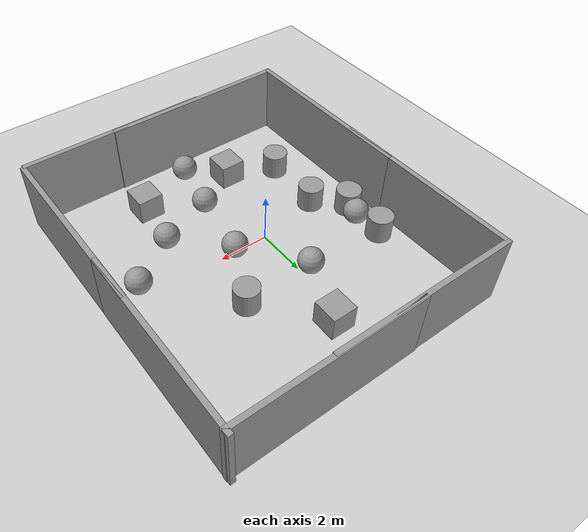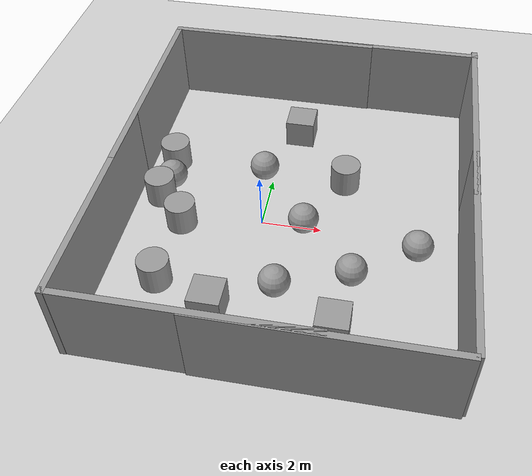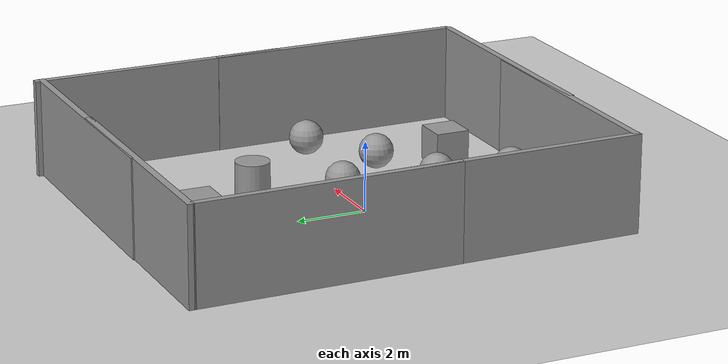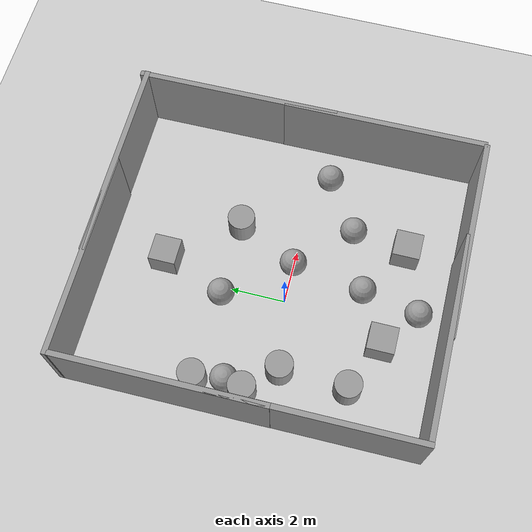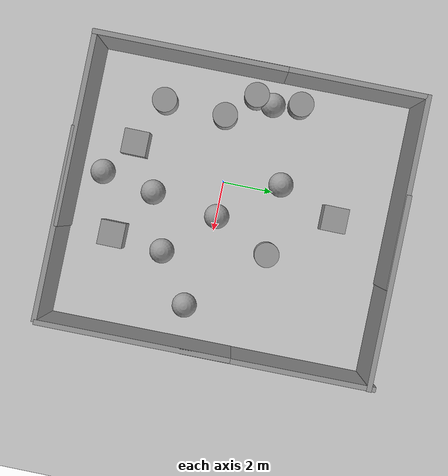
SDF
<sdf version="1.6">
 <world name="default">
  <light name="sun" type="directional">
   <pose>0 0 10 0 -0 0</pose>
   <diffuse>0.8 0.8 0.8 1</diffuse>
   <specular>0.2 0.2 0.2 1</specular>
   <attenuation>
    <range>1000</range>
    <constant>0.9</constant>
    <linear>0.01</linear>
    <quadratic>0.001</quadratic>
   </attenuation>
   <direction>-0.5 0.1 -0.9</direction>
  </light>
  <model name="ground_plane">
   <static>1</static>
   <link name="link">
    <collision name="collision">
     <geometry><plane><normal>0 0 1</normal><size>100 100</size></plane></geometry>
     <surface>
      <contact><collide_bitmask>65535</collide_bitmask></contact>
      <friction><ode><mu>100</mu><mu2>50</mu2></ode></friction>
     </surface>
    </collision>
    <visual name="visual">
     <cast_shadows>0</cast_shadows>
     <geometry><plane><normal>0 0 1</normal><size>100 100</size></plane></geometry>
     <material>
      <script><uri>file://media/materials/scripts/gazebo.material</uri><name>Gazebo/Grey</name></script>
     </material>
    </visual>
   </link>
  </model>
  <gravity>0 0 -9.8</gravity>
  <magnetic_field>6e-06 2.3e-05 -4.2e-05</magnetic_field>
  <atmosphere type="adiabatic"/>
  <physics name="default_physics" default="0" type="ode">
   <max_step_size>0.001</max_step_size>
   <real_time_factor>1</real_time_factor>
   <real_time_update_rate>1000</real_time_update_rate>
  </physics>
  <scene><ambient>0.4 0.4 0.4 1</ambient><background>0.7 0.7 0.7 1</background><shadows>1</shadows></scene>
  <audio><device>default</device></audio>
  <spherical_coordinates>
   <surface_model>EARTH_WGS84</surface_model>
   <latitude_deg>0</latitude_deg>
   <longitude_deg>0</longitude_deg>
   <elevation>0</elevation>
   <heading_deg>0</heading_deg>
  </spherical_coordinates>
  <model name="unit_sphere">
   <pose>0.971151 -2.67962 0.5 0 -0 0</pose>
   <link name="link">
    <inertial>
     <mass>1</mass>
     <inertia><ixx>0.1</ixx><ixy>0</ixy><ixz>0</ixz><iyy>0.1</iyy><iyz>0</iyz><izz>0.1</izz></inertia>
    </inertial>
    <collision name="collision"><geometry><sphere><radius>0.5</radius></sphere></geometry></collision>
    <visual name="visual">
     <geometry><sphere><radius>0.5</radius></sphere></geometry>
     <material>
      <script><name>Gazebo/Grey</name><uri>file://media/materials/scripts/gazebo.material</uri></script>
     </material>
    </visual>
   </link>
  </model>
  <model name="unit_sphere_0">
   <pose>-0.3538 2.28422 0.5 0 -0 0</pose>
   <link name="link">
    <inertial>
     <mass>1</mass>
     <inertia><ixx>0.1</ixx><ixy>0</ixy><ixz>0</ixz><iyy>0.1</iyy><iyz>0</iyz><izz>0.1</izz></inertia>
    </inertial>
    <collision name="collision"><geometry><sphere><radius>0.5</radius></sphere></geometry></collision>
    <visual name="visual">
     <geometry><sphere><radius>0.5</radius></sphere></geometry>
     <material>
      <script><name>Gazebo/Grey</name><uri>file://media/materials/scripts/gazebo.material</uri></script>
     </material>
    </visual>
   </link>
  </model>
  <model name="unit_sphere_1">
   <pose>-3.41921 1.32551 0.5 0 -0 0</pose>
   <link name="link">
    <inertial>
     <mass>1</mass>
     <inertia><ixx>0.1</ixx><ixy>0</ixy><ixz>0</ixz><iyy>0.1</iyy><iyz>0</iyz><izz>0.1</izz></inertia>
    </inertial>
    <collision name="collision"><geometry><sphere><radius>0.5</radius></sphere></geometry></collision>
    <visual name="visual">
     <geometry><sphere><radius>0.5</radius></sphere></geometry>
     <material>
      <script><name>Gazebo/Grey</name><uri>file://media/materials/scripts/gazebo.material</uri></script>
     </material>
    </visual>
   </link>
  </model>
  <model name="unit_sphere_2">
   <pose>3.20823 -1.86111 0.5 0 -0 0</pose>
   <link name="link">
    <inertial>
     <mass>1</mass>
     <inertia><ixx>0.1</ixx><ixy>0</ixy><ixz>0</ixz><iyy>0.1</iyy><iyz>0</iyz><izz>0.1</izz></inertia>
    </inertial>
    <collision name="collision"><geometry><sphere><radius>0.5</radius></sphere></geometry></collision>
    <visual name="visual">
     <geometry><sphere><radius>0.5</radius></sphere></geometry>
     <material>
      <script><name>Gazebo/Grey</name><uri>file://media/materials/scripts/gazebo.material</uri></script>
     </material>
    </visual>
   </link>
  </model>
  <model name="unit_cylinder_1">
   <link name="link">
    <inertial>
     <mass>1</mass>
     <inertia><ixx>0.145833</ixx><ixy>0</ixy><ixz>0</ixz><iyy>0.145833</iyy><iyz>0</iyz><izz>0.125</izz></inertia>
    </inertial>
    <visual name="visual">
     <geometry><cylinder><radius>0.5</radius><length>1</length></cylinder></geometry>
     <material>
      <script><name>Gazebo/Grey</name><uri>file://media/materials/scripts/gazebo.material</uri></script>
     </material>
    </visual>
    <collision name="collision">
     <geometry><cylinder><radius>0.5</radius><length>1</length></cylinder></geometry>
     <surface>
      <friction>
       <ode><mu>1</mu><mu2>1</mu2><fdir1>0 0 0</fdir1><slip1>0</slip1><slip2>0</slip2></ode>
       <torsional>
        <coefficient>1</coefficient>
        <patch_radius>0</patch_radius>
        <surface_radius>0</surface_radius>
        <use_patch_radius>1</use_patch_radius>
        <ode><slip>0</slip></ode>
       </torsional>
      </friction>
      <bounce><restitution_coefficient>0</restitution_coefficient><threshold>1e+06</threshold></bounce>
      <contact>
       <collide_without_contact>0</collide_without_contact>
       <collide_without_contact_bitmask>1</collide_without_contact_bitmask>
       <collide_bitmask>1</collide_bitmask>
       <ode>
        <soft_cfm>0</soft_cfm>
        <soft_erp>0.2</soft_erp>
        <kp>1e+13</kp>
        <kd>1</kd>
        <max_vel>0.01</max_vel>
        <min_depth>0</min_depth>
       </ode>
       <bullet>
        <split_impulse>1</split_impulse>
        <split_impulse_penetration_threshold>-0.01</split_impulse_penetration_threshold>
        <soft_cfm>0</soft_cfm>
        <soft_erp>0.2</soft_erp>
        <kp>1e+13</kp>
        <kd>1</kd>
       </bullet>
      </contact>
     </surface>
    </collision>
   </link>
   <static>0</static>
   <pose>2.49917 2.27238 0.5 0 -0 0</pose>
  </model>
  <model name="unit_sphere_3">
   <pose>0.565167 -4.81395 0.5 0 -0 0</pose>
   <link name="link">
    <inertial>
     <mass>1</mass>
     <inertia><ixx>0.1</ixx><ixy>0</ixy><ixz>0</ixz><iyy>0.1</iyy><iyz>0</iyz><izz>0.1</izz></inertia>
    </inertial>
    <collision name="collision"><geometry><sphere><radius>0.5</radius></sphere></geometry></collision>
    <visual name="visual">
     <geometry><sphere><radius>0.5</radius></sphere></geometry>
     <material>
      <script><name>Gazebo/Grey</name><uri>file://media/materials/scripts/gazebo.material</uri></script>
     </material>
    </visual>
   </link>
  </model>
  <model name="unit_sphere_4">
   <pose>5.15558 -0.537604 0.5 0 -0 0</pose>
   <link name="link">
    <inertial>
     <mass>1</mass>
     <inertia><ixx>0.1</ixx><ixy>0</ixy><ixz>0</ixz><iyy>0.1</iyy><iyz>0</iyz><izz>0.1</izz></inertia>
    </inertial>
    <collision name="collision"><geometry><sphere><radius>0.5</radius></sphere></geometry></collision>
    <visual name="visual">
     <geometry><sphere><radius>0.5</radius></sphere></geometry>
     <material>
      <script><name>Gazebo/Grey</name><uri>file://media/materials/scripts/gazebo.material</uri></script>
     </material>
    </visual>
   </link>
  </model>
  <model name="unit_cylinder_3">
   <pose>-2.59987 -0.463289 0.5 0 -0 0</pose>
   <link name="link">
    <inertial>
     <mass>1</mass>
     <inertia><ixx>0.145833</ixx><ixy>0</ixy><ixz>0</ixz><iyy>0.145833</iyy><iyz>0</iyz><izz>0.125</izz></inertia>
    </inertial>
    <collision name="collision">
     <geometry><cylinder><radius>0.5</radius><length>1</length></cylinder></geometry>
    </collision>
    <visual name="visual">
     <geometry><cylinder><radius>0.5</radius><length>1</length></cylinder></geometry>
     <material>
      <script><name>Gazebo/Grey</name><uri>file://media/materials/scripts/gazebo.material</uri></script>
     </material>
    </visual>
   </link>
  </model>
  <model name="unit_cylinder_5">
   <pose>-3.63129 0.611817 0.5 0 -0 0</pose>
   <link name="link">
    <inertial>
     <mass>1</mass>
     <inertia><ixx>0.145833</ixx><ixy>0</ixy><ixz>0</ixz><iyy>0.145833</iyy><iyz>0</iyz><izz>0.125</izz></inertia>
    </inertial>
    <collision name="collision">
     <geometry><cylinder><radius>0.5</radius><length>1</length></cylinder></geometry>
    </collision>
    <visual name="visual">
     <geometry><cylinder><radius>0.5</radius><length>1</length></cylinder></geometry>
     <material>
      <script><name>Gazebo/Grey</name><uri>file://media/materials/scripts/gazebo.material</uri></script>
     </material>
    </visual>
   </link>
  </model>
  <model name="unit_cylinder_6">
   <pose>-3.61878 2.40981 0.5 0 -0 0</pose>
   <link name="link">
    <inertial>
     <mass>1</mass>
     <inertia><ixx>0.145833</ixx><ixy>0</ixy><ixz>0</ixz><iyy>0.145833</iyy><iyz>0</iyz><izz>0.125</izz></inertia>
    </inertial>
    <collision name="collision">
     <geometry><cylinder><radius>0.5</radius><length>1</length></cylinder></geometry>
    </collision>
    <visual name="visual">
     <geometry><cylinder><radius>0.5</radius><length>1</length></cylinder></geometry>
     <material>
      <script><name>Gazebo/Grey</name><uri>file://media/materials/scripts/gazebo.material</uri></script>
     </material>
    </visual>
   </link>
  </model>
  <model name="unit_cylinder_8">
   <pose>-2.70209 -2.93014 0.5 0 -0 0</pose>
   <link name="link">
    <inertial>
     <mass>1</mass>
     <inertia><ixx>0.145833</ixx><ixy>0</ixy><ixz>0</ixz><iyy>0.145833</iyy><iyz>0</iyz><izz>0.125</izz></inertia>
    </inertial>
    <collision name="collision">
     <geometry><cylinder><radius>0.5</radius><length>1</length></cylinder></geometry>
    </collision>
    <visual name="visual">
     <geometry><cylinder><radius>0.5</radius><length>1</length></cylinder></geometry>
     <material>
      <script><name>Gazebo/Grey</name><uri>file://media/materials/scripts/gazebo.material</uri></script>
     </material>
    </visual>
   </link>
  </model>
  <model name="unit_box">
   <pose>-0.805545 -3.73382 0.5 0 -0 0</pose>
   <link name="link">
    <inertial>
     <mass>1</mass>
     <inertia>
      <ixx>0.166667</ixx>
      <ixy>0</ixy>
      <ixz>0</ixz>
      <iyy>0.166667</iyy>
      <iyz>0</iyz>
      <izz>0.166667</izz>
     </inertia>
    </inertial>
    <collision name="collision"><geometry><box><size>1 1 1</size></box></geometry></collision>
    <visual name="visual">
     <geometry><box><size>1 1 1</size></box></geometry>
     <material>
      <script><name>Gazebo/Grey</name><uri>file://media/materials/scripts/gazebo.material</uri></script>
     </material>
    </visual>
   </link>
  </model>
  <model name="unit_box_0">
   <pose>2.92397 -3.92029 0.5 0 -0 0</pose>
   <link name="link">
    <inertial>
     <mass>1</mass>
     <inertia>
      <ixx>0.166667</ixx>
      <ixy>0</ixy>
      <ixz>0</ixz>
      <iyy>0.166667</iyy>
      <iyz>0</iyz>
      <izz>0.166667</izz>
     </inertia>
    </inertial>
    <collision name="collision"><geometry><box><size>1 1 1</size></box></geometry></collision>
    <visual name="visual">
     <geometry><box><size>1 1 1</size></box></geometry>
     <material>
      <script><name>Gazebo/Grey</name><uri>file://media/materials/scripts/gazebo.material</uri></script>
     </material>
    </visual>
   </link>
  </model>
  <model name="unit_box_1">
   <pose>0.571049 4.62951 0.5 0 -0 0</pose>
   <link name="link">
    <inertial>
     <mass>1</mass>
     <inertia>
      <ixx>0.166667</ixx>
      <ixy>0</ixy>
      <ixz>0</ixz>
      <iyy>0.166667</iyy>
      <iyz>0</iyz>
      <izz>0.166667</izz>
     </inertia>
    </inertial>
    <collision name="collision"><geometry><box><size>1 1 1</size></box></geometry></collision>
    <visual name="visual">
     <geometry><box><size>1 1 1</size></box></geometry>
     <material>
      <script><name>Gazebo/Grey</name><uri>file://media/materials/scripts/gazebo.material</uri></script>
     </material>
    </visual>
   </link>
  </model>
  <model name="unit_sphere_5">
   <pose>1.40812 0.015745 0.5 0 -0 0</pose>
   <link name="link">
    <inertial>
     <mass>1</mass>
     <inertia><ixx>0.1</ixx><ixy>0</ixy><ixz>0</ixz><iyy>0.1</iyy><iyz>0</iyz><izz>0.1</izz></inertia>
    </inertial>
    <collision name="collision"><geometry><sphere><radius>0.5</radius></sphere></geometry></collision>
    <visual name="visual">
     <geometry><sphere><radius>0.5</radius></sphere></geometry>
     <material>
      <script><name>Gazebo/Grey</name><uri>file://media/materials/scripts/gazebo.material</uri></script>
     </material>
    </visual>
   </link>
  </model>
  <model name="grey_wall">
   <static>1</static>
   <link name="link">
    <pose>0 0 1.4 0 -0 0</pose>
    <collision name="collision"><geometry><box><size>7.5 0.2 2.8</size></box></geometry></collision>
    <visual name="visual">
     <cast_shadows>0</cast_shadows>
     <geometry><box><size>7.5 0.2 2.8</size></box></geometry>
     <material>
      <script>
       <uri>model://grey_wall/materials/scripts</uri>
       <uri>model://grey_wall/materials/textures</uri>
       <name>vrc/grey_wall</name>
      </script>
     </material>
    </visual>
   </link>
   <pose>-0.938363 6.91024 0 0 -0 0</pose>
  </model>
  <model name="grey_wall_0">
   <static>1</static>
   <link name="link">
    <pose>0 0 1.4 0 -0 0</pose>
    <collision name="collision"><geometry><box><size>7.5 0.2 2.8</size></box></geometry></collision>
    <visual name="visual">
     <cast_shadows>0</cast_shadows>
     <geometry><box><size>7.5 0.2 2.8</size></box></geometry>
     <material>
      <script>
       <uri>model://grey_wall/materials/scripts</uri>
       <uri>model://grey_wall/materials/textures</uri>
       <name>vrc/grey_wall</name>
      </script>
     </material>
    </visual>
   </link>
   <pose>-4.55468 3.10466 0 0 -0 1.57983</pose>
  </model>
  <model name="grey_wall_clone">
   <static>1</static>
   <link name="link">
    <pose>0 0 1.4 0 -0 0</pose>
    <collision name="collision"><geometry><box><size>7.5 0.2 2.8</size></box></geometry></collision>
    <visual name="visual">
     <cast_shadows>0</cast_shadows>
     <geometry><box><size>7.5 0.2 2.8</size></box></geometry>
     <material>
      <script>
       <uri>model://grey_wall/materials/scripts</uri>
       <uri>model://grey_wall/materials/textures</uri>
       <name>vrc/grey_wall</name>
      </script>
     </material>
    </visual>
   </link>
   <pose>2.89544 6.94799 0 0 -0 0</pose>
  </model>
  <model name="grey_wall_0_clone">
   <static>1</static>
   <link name="link">
    <pose>0 0 1.4 0 -0 0</pose>
    <collision name="collision"><geometry><box><size>7.5 0.2 2.8</size></box></geometry></collision>
    <visual name="visual">
     <cast_shadows>0</cast_shadows>
     <geometry><box><size>7.5 0.2 2.8</size></box></geometry>
     <material>
      <script>
       <uri>model://grey_wall/materials/scripts</uri>
       <uri>model://grey_wall/materials/textures</uri>
       <name>vrc/grey_wall</name>
      </script>
     </material>
    </visual>
   </link>
   <pose>-4.49964 -2.16754 0 0 -0 1.57983</pose>
  </model>
  <model name="grey_wall_clone_0">
   <static>1</static>
   <link name="link">
    <pose>0 0 1.4 0 -0 0</pose>
    <collision name="collision"><geometry><box><size>7.5 0.2 2.8</size></box></geometry></collision>
    <visual name="visual">
     <cast_shadows>0</cast_shadows>
     <geometry><box><size>7.5 0.2 2.8</size></box></geometry>
     <material>
      <script>
       <uri>model://grey_wall/materials/scripts</uri>
       <uri>model://grey_wall/materials/textures</uri>
       <name>vrc/grey_wall</name>
      </script>
     </material>
    </visual>
   </link>
   <pose>-0.783779 -5.80716 0 0 -0 0</pose>
  </model>
  <model name="grey_wall_clone_1">
   <static>1</static>
   <link name="link">
    <pose>0 0 1.4 0 -0 0</pose>
    <collision name="collision"><geometry><box><size>7.5 0.2 2.8</size></box></geometry></collision>
    <visual name="visual">
     <cast_shadows>0</cast_shadows>
     <geometry><box><size>7.5 0.2 2.8</size></box></geometry>
     <material>
      <script>
       <uri>model://grey_wall/materials/scripts</uri>
       <uri>model://grey_wall/materials/textures</uri>
       <name>vrc/grey_wall</name>
      </script>
     </material>
    </visual>
   </link>
   <pose>2.88601 -5.85044 0 0 -0 0</pose>
  </model>
  <model name="grey_wall_0_clone_0">
   <static>1</static>
   <link name="link">
    <pose>0 0 1.4 0 -0 0</pose>
    <collision name="collision"><geometry><box><size>7.5 0.2 2.8</size></box></geometry></collision>
    <visual name="visual">
     <cast_shadows>0</cast_shadows>
     <geometry><box><size>7.5 0.2 2.8</size></box></geometry>
     <material>
      <script>
       <uri>model://grey_wall/materials/scripts</uri>
       <uri>model://grey_wall/materials/textures</uri>
       <name>vrc/grey_wall</name>
      </script>
     </material>
    </visual>
   </link>
   <pose>6.5582 3.43878 0 0 -0 1.57983</pose>
  </model>
  <model name="grey_wall_0_clone_1">
   <static>1</static>
   <link name="link">
    <pose>0 0 1.4 0 -0 0</pose>
    <collision name="collision"><geometry><box><size>7.5 0.2 2.8</size></box></geometry></collision>
    <visual name="visual">
     <cast_shadows>0</cast_shadows>
     <geometry><box><size>7.5 0.2 2.8</size></box></geometry>
     <material>
      <script>
       <uri>model://grey_wall/materials/scripts</uri>
       <uri>model://grey_wall/materials/textures</uri>
       <name>vrc/grey_wall</name>
      </script>
     </material>
    </visual>
   </link>
   <pose>6.6003 -2.10947 0 0 -0 1.57983</pose>
  </model>
 </world>
</sdf>
